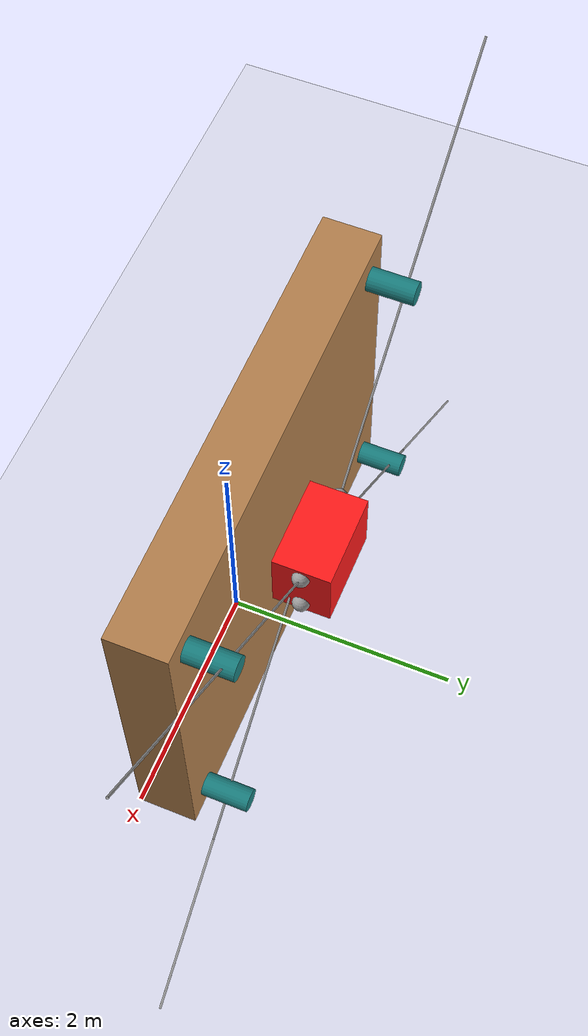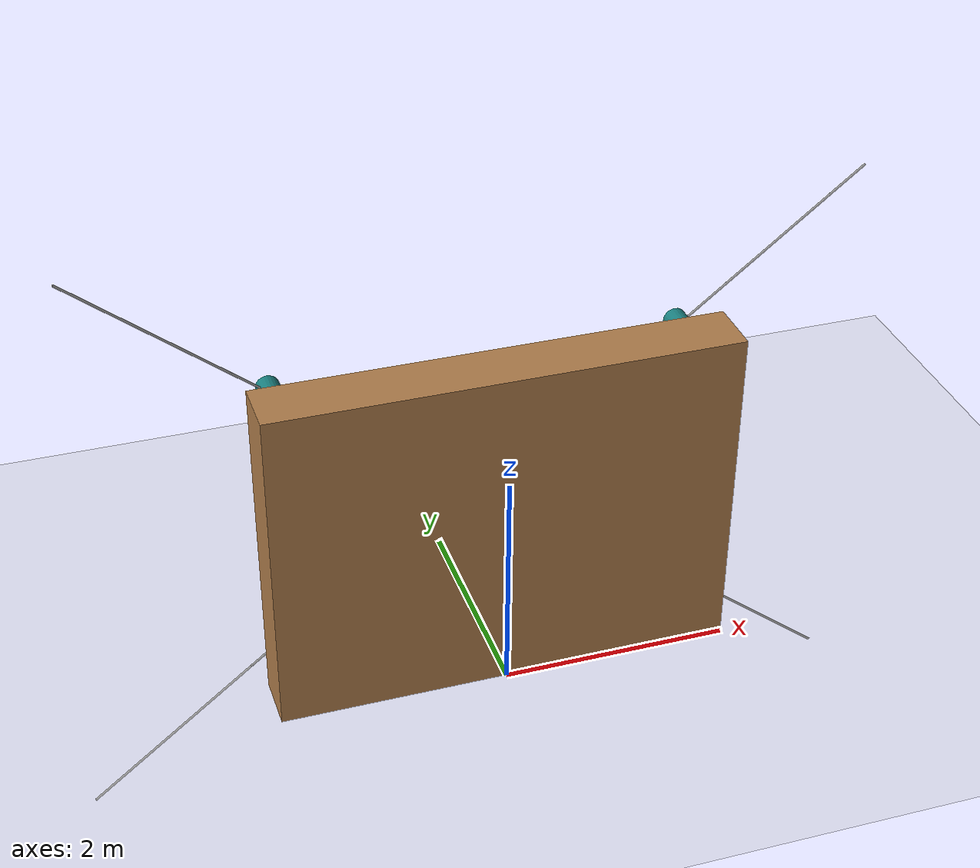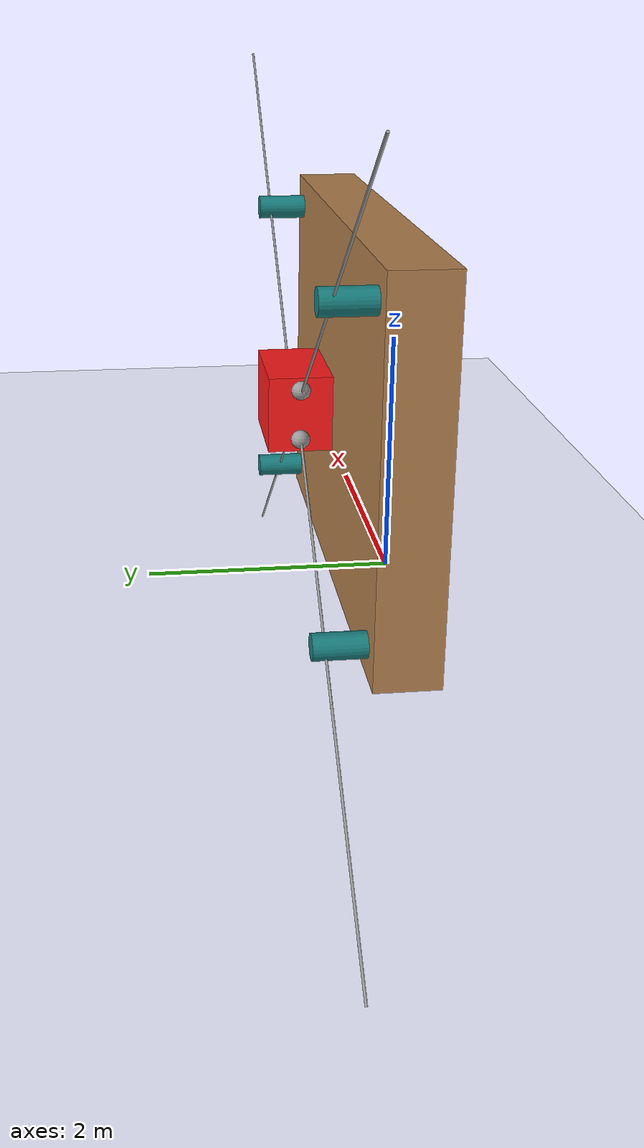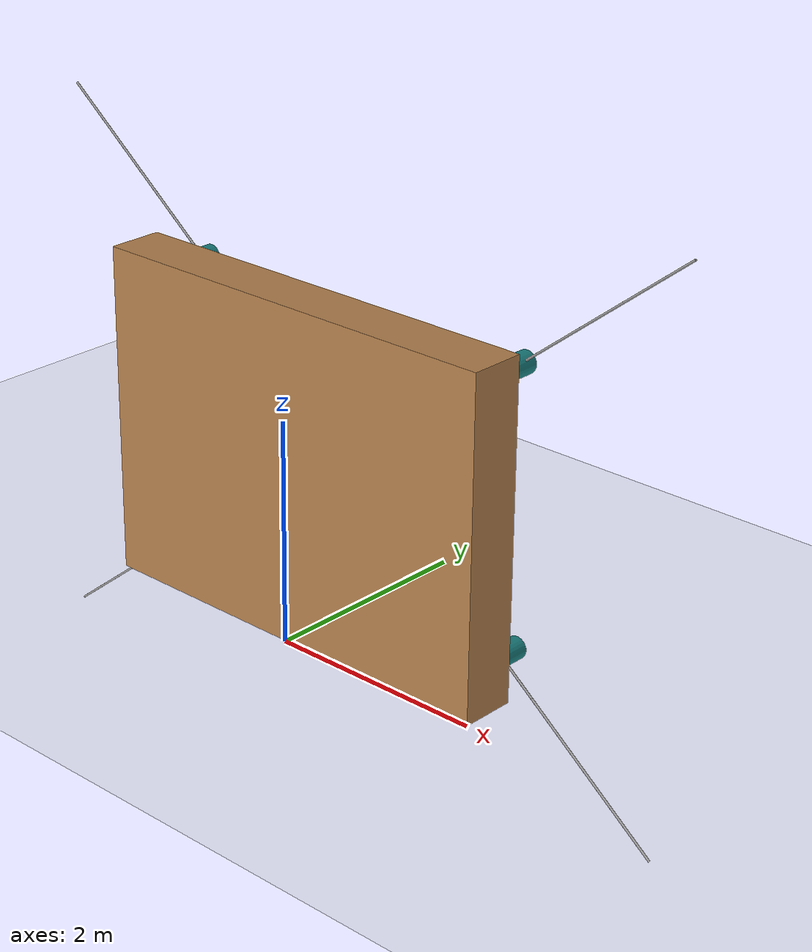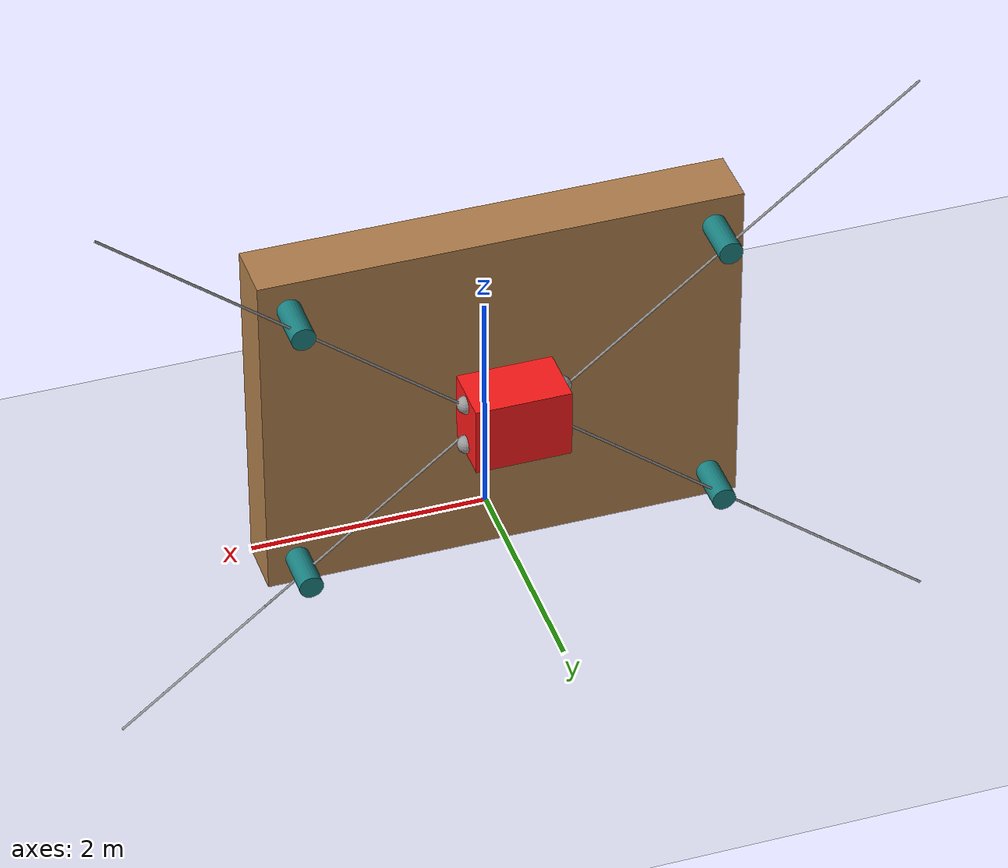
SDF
<sdf version="1.7">
 <world name="default">
  <light name="sun" type="directional">
   <pose>0 0 10 0 -0 0</pose>
   <diffuse>0.8 0.8 0.8 1</diffuse>
   <specular>0.2 0.2 0.2 1</specular>
   <attenuation>
    <range>1000</range>
    <constant>0.9</constant>
    <linear>0.01</linear>
    <quadratic>0.001</quadratic>
   </attenuation>
   <direction>-0.5 0.1 -0.9</direction>
   <spot><inner_angle>0</inner_angle><outer_angle>0</outer_angle><falloff>0</falloff></spot>
  </light>
  <model name="ground_plane">
   <static>1</static>
   <link name="link">
    <collision name="collision">
     <geometry><plane><normal>0 0 1</normal><size>100 100</size></plane></geometry>
     <surface>
      <contact><collide_bitmask>65535</collide_bitmask></contact>
      <friction><ode><mu>100</mu><mu2>50</mu2></ode></friction>
     </surface>
    </collision>
    <visual name="visual">
     <cast_shadows>0</cast_shadows>
     <geometry><plane><normal>0 0 1</normal><size>100 100</size></plane></geometry>
     <material>
      <script><uri>file://media/materials/scripts/gazebo.material</uri><name>Gazebo/Grey</name></script>
     </material>
    </visual>
   </link>
  </model>
  <gravity>0 0 -9.8</gravity>
  <magnetic_field>6e-06 2.3e-05 -4.2e-05</magnetic_field>
  <atmosphere type="adiabatic"/>
  <physics type="ode">
   <max_step_size>0.001</max_step_size>
   <real_time_factor>1</real_time_factor>
   <real_time_update_rate>1000</real_time_update_rate>
  </physics>
  <scene><ambient>0.4 0.4 0.4 1</ambient><background>0.7 0.7 0.7 1</background><shadows>1</shadows></scene>
  <audio><device>default</device></audio>
  <spherical_coordinates>
   <surface_model>EARTH_WGS84</surface_model>
   <latitude_deg>0</latitude_deg>
   <longitude_deg>0</longitude_deg>
   <elevation>0</elevation>
   <heading_deg>0</heading_deg>
  </spherical_coordinates>
  <model name="Wallbot_Basic">
   <link name="link_0">
    <inertial>
     <mass>1</mass>
     <inertia>
      <ixx>0.166667</ixx>
      <ixy>0</ixy>
      <ixz>0</ixz>
      <iyy>0.166667</iyy>
      <iyz>0</iyz>
      <izz>0.166667</izz>
     </inertia>
    </inertial>
    <pose>0.015 0 0.005 0 -0 0</pose>
    <visual name="visual">
     <geometry><box><size>0.8 0.5 0.6</size></box></geometry>
     <material>
      <lighting>1</lighting>
      <script><uri>file://media/materials/scripts/gazebo.material</uri><name>Gazebo/Grey</name></script>
      <shader type="pixel"><normal_map>__default__</normal_map></shader>
      <ambient>1 0.1 0.1 1</ambient>
      <diffuse>0.7 0.7 0.7 1</diffuse>
      <specular>0.01 0.01 0.01 1</specular>
      <emissive>0 0 0 1</emissive>
     </material>
    </visual>
    <collision name="collision">
     <geometry><box><size>0.8 0.5 0.6</size></box></geometry>
     <surface>
      <friction>
       <ode><mu>1</mu><mu2>1</mu2><fdir1>0 0 0</fdir1><slip1>0</slip1><slip2>0</slip2></ode>
       <torsional>
        <coefficient>1</coefficient>
        <patch_radius>0</patch_radius>
        <surface_radius>0</surface_radius>
        <use_patch_radius>1</use_patch_radius>
        <ode><slip>0</slip></ode>
       </torsional>
      </friction>
      <bounce><restitution_coefficient>0</restitution_coefficient><threshold>1e+06</threshold></bounce>
      <contact>
       <collide_without_contact>0</collide_without_contact>
       <collide_without_contact_bitmask>1</collide_without_contact_bitmask>
       <collide_bitmask>1</collide_bitmask>
       <ode>
        <soft_cfm>0</soft_cfm>
        <soft_erp>0.2</soft_erp>
        <kp>1e+13</kp>
        <kd>1</kd>
        <max_vel>0.01</max_vel>
        <min_depth>0</min_depth>
       </ode>
       <bullet>
        <split_impulse>1</split_impulse>
        <split_impulse_penetration_threshold>-0.01</split_impulse_penetration_threshold>
        <soft_cfm>0</soft_cfm>
        <soft_erp>0.2</soft_erp>
        <kp>1e+13</kp>
        <kd>1</kd>
       </bullet>
      </contact>
     </surface>
    </collision>
   </link>
   <link name="link_1">
    <inertial>
     <mass>1</mass>
     <inertia><ixx>0.1</ixx><ixy>0</ixy><ixz>0</ixz><iyy>0.1</iyy><iyz>0</iyz><izz>0.1</izz></inertia>
    </inertial>
    <pose>-0.385 0 0.205 0 -0 0</pose>
    <visual name="visual">
     <geometry><sphere><radius>0.075</radius></sphere></geometry>
     <material>
      <lighting>1</lighting>
      <script><uri>file://media/materials/scripts/gazebo.material</uri><name>Gazebo/Grey</name></script>
      <shader type="pixel"><normal_map>__default__</normal_map></shader>
      <ambient>0.3 0.3 0.3 1</ambient>
      <diffuse>0.7 0.7 0.7 1</diffuse>
      <specular>0.01 0.01 0.01 1</specular>
      <emissive>0 0 0 1</emissive>
     </material>
    </visual>
    <collision name="collision">
     <geometry><sphere><radius>0.075</radius></sphere></geometry>
     <surface>
      <friction>
       <ode><mu>1</mu><mu2>1</mu2><fdir1>0 0 0</fdir1><slip1>0</slip1><slip2>0</slip2></ode>
       <torsional>
        <coefficient>1</coefficient>
        <patch_radius>0</patch_radius>
        <surface_radius>0</surface_radius>
        <use_patch_radius>1</use_patch_radius>
        <ode><slip>0</slip></ode>
       </torsional>
      </friction>
      <bounce><restitution_coefficient>0</restitution_coefficient><threshold>1e+06</threshold></bounce>
      <contact>
       <collide_without_contact>0</collide_without_contact>
       <collide_without_contact_bitmask>1</collide_without_contact_bitmask>
       <collide_bitmask>1</collide_bitmask>
       <ode>
        <soft_cfm>0</soft_cfm>
        <soft_erp>0.2</soft_erp>
        <kp>1e+13</kp>
        <kd>1</kd>
        <max_vel>0.01</max_vel>
        <min_depth>0</min_depth>
       </ode>
       <bullet>
        <split_impulse>1</split_impulse>
        <split_impulse_penetration_threshold>-0.01</split_impulse_penetration_threshold>
        <soft_cfm>0</soft_cfm>
        <soft_erp>0.2</soft_erp>
        <kp>1e+13</kp>
        <kd>1</kd>
       </bullet>
      </contact>
     </surface>
    </collision>
   </link>
   <link name="link_1_clone">
    <inertial>
     <mass>1</mass>
     <inertia><ixx>0.1</ixx><ixy>0</ixy><ixz>0</ixz><iyy>0.1</iyy><iyz>0</iyz><izz>0.1</izz></inertia>
    </inertial>
    <pose>0.415 0 0.205 0 -0 0</pose>
    <visual name="visual">
     <geometry><sphere><radius>0.075</radius></sphere></geometry>
     <material>
      <lighting>1</lighting>
      <script><uri>file://media/materials/scripts/gazebo.material</uri><name>Gazebo/Grey</name></script>
      <shader type="pixel"><normal_map>__default__</normal_map></shader>
      <ambient>0.3 0.3 0.3 1</ambient>
      <diffuse>0.7 0.7 0.7 1</diffuse>
      <specular>0.01 0.01 0.01 1</specular>
      <emissive>0 0 0 1</emissive>
     </material>
    </visual>
    <collision name="collision">
     <geometry><sphere><radius>0.075</radius></sphere></geometry>
     <surface>
      <friction>
       <ode><mu>1</mu><mu2>1</mu2><fdir1>0 0 0</fdir1><slip1>0</slip1><slip2>0</slip2></ode>
       <torsional>
        <coefficient>1</coefficient>
        <patch_radius>0</patch_radius>
        <surface_radius>0</surface_radius>
        <use_patch_radius>1</use_patch_radius>
        <ode><slip>0</slip></ode>
       </torsional>
      </friction>
      <bounce><restitution_coefficient>0</restitution_coefficient><threshold>1e+06</threshold></bounce>
      <contact>
       <collide_without_contact>0</collide_without_contact>
       <collide_without_contact_bitmask>1</collide_without_contact_bitmask>
       <collide_bitmask>1</collide_bitmask>
       <ode>
        <soft_cfm>0</soft_cfm>
        <soft_erp>0.2</soft_erp>
        <kp>1e+13</kp>
        <kd>1</kd>
        <max_vel>0.01</max_vel>
        <min_depth>0</min_depth>
       </ode>
       <bullet>
        <split_impulse>1</split_impulse>
        <split_impulse_penetration_threshold>-0.01</split_impulse_penetration_threshold>
        <soft_cfm>0</soft_cfm>
        <soft_erp>0.2</soft_erp>
        <kp>1e+13</kp>
        <kd>1</kd>
       </bullet>
      </contact>
     </surface>
    </collision>
   </link>
   <link name="link_1_clone_0">
    <inertial>
     <mass>1</mass>
     <inertia><ixx>0.1</ixx><ixy>0</ixy><ixz>0</ixz><iyy>0.1</iyy><iyz>0</iyz><izz>0.1</izz></inertia>
    </inertial>
    <pose>0.415 0 -0.195 0 -0 0</pose>
    <visual name="visual">
     <geometry><sphere><radius>0.075</radius></sphere></geometry>
     <material>
      <lighting>1</lighting>
      <script><uri>file://media/materials/scripts/gazebo.material</uri><name>Gazebo/Grey</name></script>
      <shader type="pixel"><normal_map>__default__</normal_map></shader>
      <ambient>0.3 0.3 0.3 1</ambient>
      <diffuse>0.7 0.7 0.7 1</diffuse>
      <specular>0.01 0.01 0.01 1</specular>
      <emissive>0 0 0 1</emissive>
     </material>
    </visual>
    <collision name="collision">
     <geometry><sphere><radius>0.075</radius></sphere></geometry>
     <surface>
      <friction>
       <ode><mu>1</mu><mu2>1</mu2><fdir1>0 0 0</fdir1><slip1>0</slip1><slip2>0</slip2></ode>
       <torsional>
        <coefficient>1</coefficient>
        <patch_radius>0</patch_radius>
        <surface_radius>0</surface_radius>
        <use_patch_radius>1</use_patch_radius>
        <ode><slip>0</slip></ode>
       </torsional>
      </friction>
      <bounce><restitution_coefficient>0</restitution_coefficient><threshold>1e+06</threshold></bounce>
      <contact>
       <collide_without_contact>0</collide_without_contact>
       <collide_without_contact_bitmask>1</collide_without_contact_bitmask>
       <collide_bitmask>1</collide_bitmask>
       <ode>
        <soft_cfm>0</soft_cfm>
        <soft_erp>0.2</soft_erp>
        <kp>1e+13</kp>
        <kd>1</kd>
        <max_vel>0.01</max_vel>
        <min_depth>0</min_depth>
       </ode>
       <bullet>
        <split_impulse>1</split_impulse>
        <split_impulse_penetration_threshold>-0.01</split_impulse_penetration_threshold>
        <soft_cfm>0</soft_cfm>
        <soft_erp>0.2</soft_erp>
        <kp>1e+13</kp>
        <kd>1</kd>
       </bullet>
      </contact>
     </surface>
    </collision>
   </link>
   <link name="link_1_clone_1">
    <inertial>
     <mass>1</mass>
     <inertia><ixx>0.1</ixx><ixy>0</ixy><ixz>0</ixz><iyy>0.1</iyy><iyz>0</iyz><izz>0.1</izz></inertia>
    </inertial>
    <pose>-0.385 0 -0.195 0 -0 0</pose>
    <visual name="visual">
     <geometry><sphere><radius>0.075</radius></sphere></geometry>
     <material>
      <lighting>1</lighting>
      <script><uri>file://media/materials/scripts/gazebo.material</uri><name>Gazebo/Grey</name></script>
      <shader type="pixel"><normal_map>__default__</normal_map></shader>
      <ambient>0.3 0.3 0.3 1</ambient>
      <diffuse>0.7 0.7 0.7 1</diffuse>
      <specular>0.01 0.01 0.01 1</specular>
      <emissive>0 0 0 1</emissive>
     </material>
    </visual>
    <collision name="collision">
     <geometry><sphere><radius>0.075</radius></sphere></geometry>
     <surface>
      <friction>
       <ode><mu>1</mu><mu2>1</mu2><fdir1>0 0 0</fdir1><slip1>0</slip1><slip2>0</slip2></ode>
       <torsional>
        <coefficient>1</coefficient>
        <patch_radius>0</patch_radius>
        <surface_radius>0</surface_radius>
        <use_patch_radius>1</use_patch_radius>
        <ode><slip>0</slip></ode>
       </torsional>
      </friction>
      <bounce><restitution_coefficient>0</restitution_coefficient><threshold>1e+06</threshold></bounce>
      <contact>
       <collide_without_contact>0</collide_without_contact>
       <collide_without_contact_bitmask>1</collide_without_contact_bitmask>
       <collide_bitmask>1</collide_bitmask>
       <ode>
        <soft_cfm>0</soft_cfm>
        <soft_erp>0.2</soft_erp>
        <kp>1e+13</kp>
        <kd>1</kd>
        <max_vel>0.01</max_vel>
        <min_depth>0</min_depth>
       </ode>
       <bullet>
        <split_impulse>1</split_impulse>
        <split_impulse_penetration_threshold>-0.01</split_impulse_penetration_threshold>
        <soft_cfm>0</soft_cfm>
        <soft_erp>0.2</soft_erp>
        <kp>1e+13</kp>
        <kd>1</kd>
       </bullet>
      </contact>
     </surface>
    </collision>
   </link>
   <joint name="link_0_JOINT_0" type="fixed">
    <parent>link_0</parent>
    <child>link_1</child>
    <physics>
     <ode><limit><cfm>0</cfm><erp>0.2</erp></limit><suspension><cfm>0</cfm><erp>0.2</erp></suspension></ode>
    </physics>
   </joint>
   <joint name="link_0_JOINT_1" type="fixed">
    <parent>link_0</parent>
    <child>link_1_clone_1</child>
    <physics>
     <ode><limit><cfm>0</cfm><erp>0.2</erp></limit><suspension><cfm>0</cfm><erp>0.2</erp></suspension></ode>
    </physics>
   </joint>
   <joint name="link_0_JOINT_2" type="fixed">
    <parent>link_0</parent>
    <child>link_1_clone</child>
    <physics>
     <ode><limit><cfm>0</cfm><erp>0.2</erp></limit><suspension><cfm>0</cfm><erp>0.2</erp></suspension></ode>
    </physics>
   </joint>
   <joint name="link_0_JOINT_3" type="fixed">
    <parent>link_0</parent>
    <child>link_1_clone_0</child>
    <physics>
     <ode><limit><cfm>0</cfm><erp>0.2</erp></limit><suspension><cfm>0</cfm><erp>0.2</erp></suspension></ode>
    </physics>
   </joint>
   <static>0</static>
   <pose>0 0.8 1.5 8e-06 0 -8e-06</pose>
  </model>
  <model name="wallbot_wall">
   <link name="link">
    <inertial>
     <mass>1</mass>
     <inertia>
      <ixx>0.166667</ixx>
      <ixy>0</ixy>
      <ixz>0</ixz>
      <iyy>0.166667</iyy>
      <iyz>0</iyz>
      <izz>0.166667</izz>
     </inertia>
    </inertial>
    <visual name="visual">
     <geometry><box><size>4 0.5 3</size></box></geometry>
     <material>
      <script><name>Gazebo/Wood</name><uri>file://media/materials/scripts/gazebo.material</uri></script>
      <shader type="pixel"><normal_map>__default__</normal_map></shader>
      <ambient>0.7 0.7 0.3 1</ambient>
      <diffuse>0.7 0.7 0.7 1</diffuse>
      <specular>0.01 0.01 0.01 1</specular>
      <emissive>0 0 0 1</emissive>
     </material>
    </visual>
    <collision name="collision">
     <geometry><box><size>4 0.5 3</size></box></geometry>
     <surface>
      <friction>
       <ode><mu>1</mu><mu2>1</mu2><fdir1>0 0 0</fdir1><slip1>0</slip1><slip2>0</slip2></ode>
       <torsional>
        <coefficient>1</coefficient>
        <patch_radius>0</patch_radius>
        <surface_radius>0</surface_radius>
        <use_patch_radius>1</use_patch_radius>
        <ode><slip>0</slip></ode>
       </torsional>
      </friction>
      <bounce><restitution_coefficient>0</restitution_coefficient><threshold>1e+06</threshold></bounce>
      <contact>
       <collide_without_contact>0</collide_without_contact>
       <collide_without_contact_bitmask>1</collide_without_contact_bitmask>
       <collide_bitmask>1</collide_bitmask>
       <ode>
        <soft_cfm>0</soft_cfm>
        <soft_erp>0.2</soft_erp>
        <kp>1e+13</kp>
        <kd>1</kd>
        <max_vel>0.01</max_vel>
        <min_depth>0</min_depth>
       </ode>
       <bullet>
        <split_impulse>1</split_impulse>
        <split_impulse_penetration_threshold>-0.01</split_impulse_penetration_threshold>
        <soft_cfm>0</soft_cfm>
        <soft_erp>0.2</soft_erp>
        <kp>1e+13</kp>
        <kd>1</kd>
       </bullet>
      </contact>
     </surface>
    </collision>
   </link>
   <static>0</static>
   <pose>0.001722 0.249669 1.49995 -3.6e-05 2.9e-05 0.000172</pose>
  </model>
  <light name="user_directional_light_0" type="directional">
   <pose>3.8858 -4.10344 1 0 -0 0</pose>
   <diffuse>0.5 0.5 0.5 1</diffuse>
   <specular>0.1 0.1 0.1 1</specular>
   <direction>0.1 0.1 -0.9</direction>
   <attenuation>
    <range>20</range>
    <constant>0.5</constant>
    <linear>0.01</linear>
    <quadratic>0.001</quadratic>
   </attenuation>
  </light>
  <light name="user_point_light_0" type="point">
   <pose>1.35241 8.00975 1 0 -0 0</pose>
   <diffuse>0.5 0.5 0.5 1</diffuse>
   <specular>0.1 0.1 0.1 1</specular>
   <attenuation>
    <range>20</range>
    <constant>0.5</constant>
    <linear>0.01</linear>
    <quadratic>0.001</quadratic>
   </attenuation>
   <cast_shadows>0</cast_shadows>
   <direction>0 0 -1</direction>
  </light>
  <model name="Winch">
   <link name="link">
    <inertial>
     <mass>1</mass>
     <inertia><ixx>0.145833</ixx><ixy>0</ixy><ixz>0</ixz><iyy>0.145833</iyy><iyz>0</iyz><izz>0.125</izz></inertia>
    </inertial>
    <visual name="visual">
     <geometry><cylinder><radius>0.1</radius><length>0.4</length></cylinder></geometry>
     <material>
      <script><name>Gazebo/Grey</name><uri>file://media/materials/scripts/gazebo.material</uri></script>
      <shader type="pixel"><normal_map>__default__</normal_map></shader>
      <ambient>0.1 0.5 0.5 1</ambient>
      <diffuse>0.7 0.7 0.7 1</diffuse>
      <specular>0.01 0.01 0.01 1</specular>
      <emissive>0 0 0 1</emissive>
     </material>
    </visual>
    <collision name="collision">
     <geometry><cylinder><radius>0.1</radius><length>0.4</length></cylinder></geometry>
     <surface>
      <friction>
       <ode><mu>1</mu><mu2>1</mu2><fdir1>0 0 0</fdir1><slip1>0</slip1><slip2>0</slip2></ode>
       <torsional>
        <coefficient>1</coefficient>
        <patch_radius>0</patch_radius>
        <surface_radius>0</surface_radius>
        <use_patch_radius>1</use_patch_radius>
        <ode><slip>0</slip></ode>
       </torsional>
      </friction>
      <bounce><restitution_coefficient>0</restitution_coefficient><threshold>1e+06</threshold></bounce>
      <contact>
       <collide_without_contact>0</collide_without_contact>
       <collide_without_contact_bitmask>1</collide_without_contact_bitmask>
       <collide_bitmask>1</collide_bitmask>
       <ode>
        <soft_cfm>0</soft_cfm>
        <soft_erp>0.2</soft_erp>
        <kp>1e+13</kp>
        <kd>1</kd>
        <max_vel>0.01</max_vel>
        <min_depth>0</min_depth>
       </ode>
       <bullet>
        <split_impulse>1</split_impulse>
        <split_impulse_penetration_threshold>-0.01</split_impulse_penetration_threshold>
        <soft_cfm>0</soft_cfm>
        <soft_erp>0.2</soft_erp>
        <kp>1e+13</kp>
        <kd>1</kd>
       </bullet>
      </contact>
     </surface>
    </collision>
   </link>
   <static>0</static>
   <pose>1.75 0.7 2.75 1.57 -0 0</pose>
  </model>
  <model name="Winch_clone">
   <link name="link">
    <inertial>
     <mass>1</mass>
     <inertia><ixx>0.145833</ixx><ixy>0</ixy><ixz>0</ixz><iyy>0.145833</iyy><iyz>0</iyz><izz>0.125</izz></inertia>
    </inertial>
    <visual name="visual">
     <geometry><cylinder><radius>0.1</radius><length>0.4</length></cylinder></geometry>
     <material>
      <script><name>Gazebo/Grey</name><uri>file://media/materials/scripts/gazebo.material</uri></script>
      <shader type="pixel"><normal_map>__default__</normal_map></shader>
      <ambient>0.1 0.5 0.5 1</ambient>
      <diffuse>0.7 0.7 0.7 1</diffuse>
      <specular>0.01 0.01 0.01 1</specular>
      <emissive>0 0 0 1</emissive>
     </material>
    </visual>
    <collision name="collision">
     <geometry><cylinder><radius>0.1</radius><length>0.4</length></cylinder></geometry>
     <surface>
      <friction>
       <ode><mu>1</mu><mu2>1</mu2><fdir1>0 0 0</fdir1><slip1>0</slip1><slip2>0</slip2></ode>
       <torsional>
        <coefficient>1</coefficient>
        <patch_radius>0</patch_radius>
        <surface_radius>0</surface_radius>
        <use_patch_radius>1</use_patch_radius>
        <ode><slip>0</slip></ode>
       </torsional>
      </friction>
      <bounce><restitution_coefficient>0</restitution_coefficient><threshold>1e+06</threshold></bounce>
      <contact>
       <collide_without_contact>0</collide_without_contact>
       <collide_without_contact_bitmask>1</collide_without_contact_bitmask>
       <collide_bitmask>1</collide_bitmask>
       <ode>
        <soft_cfm>0</soft_cfm>
        <soft_erp>0.2</soft_erp>
        <kp>1e+13</kp>
        <kd>1</kd>
        <max_vel>0.01</max_vel>
        <min_depth>0</min_depth>
       </ode>
       <bullet>
        <split_impulse>1</split_impulse>
        <split_impulse_penetration_threshold>-0.01</split_impulse_penetration_threshold>
        <soft_cfm>0</soft_cfm>
        <soft_erp>0.2</soft_erp>
        <kp>1e+13</kp>
        <kd>1</kd>
       </bullet>
      </contact>
     </surface>
    </collision>
   </link>
   <static>0</static>
   <pose>1.75 0.7 0.25 1.57 -0 0</pose>
  </model>
  <model name="Winch_clone_0">
   <link name="link">
    <inertial>
     <mass>1</mass>
     <inertia><ixx>0.145833</ixx><ixy>0</ixy><ixz>0</ixz><iyy>0.145833</iyy><iyz>0</iyz><izz>0.125</izz></inertia>
    </inertial>
    <visual name="visual">
     <geometry><cylinder><radius>0.1</radius><length>0.4</length></cylinder></geometry>
     <material>
      <script><name>Gazebo/Grey</name><uri>file://media/materials/scripts/gazebo.material</uri></script>
      <shader type="pixel"><normal_map>__default__</normal_map></shader>
      <ambient>0.1 0.5 0.5 1</ambient>
      <diffuse>0.7 0.7 0.7 1</diffuse>
      <specular>0.01 0.01 0.01 1</specular>
      <emissive>0 0 0 1</emissive>
     </material>
    </visual>
    <collision name="collision">
     <geometry><cylinder><radius>0.1</radius><length>0.4</length></cylinder></geometry>
     <surface>
      <friction>
       <ode><mu>1</mu><mu2>1</mu2><fdir1>0 0 0</fdir1><slip1>0</slip1><slip2>0</slip2></ode>
       <torsional>
        <coefficient>1</coefficient>
        <patch_radius>0</patch_radius>
        <surface_radius>0</surface_radius>
        <use_patch_radius>1</use_patch_radius>
        <ode><slip>0</slip></ode>
       </torsional>
      </friction>
      <bounce><restitution_coefficient>0</restitution_coefficient><threshold>1e+06</threshold></bounce>
      <contact>
       <collide_without_contact>0</collide_without_contact>
       <collide_without_contact_bitmask>1</collide_without_contact_bitmask>
       <collide_bitmask>1</collide_bitmask>
       <ode>
        <soft_cfm>0</soft_cfm>
        <soft_erp>0.2</soft_erp>
        <kp>1e+13</kp>
        <kd>1</kd>
        <max_vel>0.01</max_vel>
        <min_depth>0</min_depth>
       </ode>
       <bullet>
        <split_impulse>1</split_impulse>
        <split_impulse_penetration_threshold>-0.01</split_impulse_penetration_threshold>
        <soft_cfm>0</soft_cfm>
        <soft_erp>0.2</soft_erp>
        <kp>1e+13</kp>
        <kd>1</kd>
       </bullet>
      </contact>
     </surface>
    </collision>
   </link>
   <static>0</static>
   <pose>-1.75 0.7 2.75 1.57 -0 0</pose>
  </model>
  <model name="Winch_clone_1">
   <link name="link">
    <inertial>
     <mass>1</mass>
     <inertia><ixx>0.145833</ixx><ixy>0</ixy><ixz>0</ixz><iyy>0.145833</iyy><iyz>0</iyz><izz>0.125</izz></inertia>
    </inertial>
    <visual name="visual">
     <geometry><cylinder><radius>0.1</radius><length>0.4</length></cylinder></geometry>
     <material>
      <script><name>Gazebo/Grey</name><uri>file://media/materials/scripts/gazebo.material</uri></script>
      <shader type="pixel"><normal_map>__default__</normal_map></shader>
      <ambient>0.1 0.5 0.5 1</ambient>
      <diffuse>0.7 0.7 0.7 1</diffuse>
      <specular>0.01 0.01 0.01 1</specular>
      <emissive>0 0 0 1</emissive>
     </material>
    </visual>
    <collision name="collision">
     <geometry><cylinder><radius>0.1</radius><length>0.4</length></cylinder></geometry>
     <surface>
      <friction>
       <ode><mu>1</mu><mu2>1</mu2><fdir1>0 0 0</fdir1><slip1>0</slip1><slip2>0</slip2></ode>
       <torsional>
        <coefficient>1</coefficient>
        <patch_radius>0</patch_radius>
        <surface_radius>0</surface_radius>
        <use_patch_radius>1</use_patch_radius>
        <ode><slip>0</slip></ode>
       </torsional>
      </friction>
      <bounce><restitution_coefficient>0</restitution_coefficient><threshold>1e+06</threshold></bounce>
      <contact>
       <collide_without_contact>0</collide_without_contact>
       <collide_without_contact_bitmask>1</collide_without_contact_bitmask>
       <collide_bitmask>1</collide_bitmask>
       <ode>
        <soft_cfm>0</soft_cfm>
        <soft_erp>0.2</soft_erp>
        <kp>1e+13</kp>
        <kd>1</kd>
        <max_vel>0.01</max_vel>
        <min_depth>0</min_depth>
       </ode>
       <bullet>
        <split_impulse>1</split_impulse>
        <split_impulse_penetration_threshold>-0.01</split_impulse_penetration_threshold>
        <soft_cfm>0</soft_cfm>
        <soft_erp>0.2</soft_erp>
        <kp>1e+13</kp>
        <kd>1</kd>
       </bullet>
      </contact>
     </surface>
    </collision>
   </link>
   <static>0</static>
   <pose>-1.75 0.7 0.25 1.57 -0 0</pose>
  </model>
  <model name="cable_demo">
   <link name="link">
    <inertial>
     <mass>1</mass>
     <inertia><ixx>0.145833</ixx><ixy>0</ixy><ixz>0</ixz><iyy>0.145833</iyy><iyz>0</iyz><izz>0.125</izz></inertia>
    </inertial>
    <visual name="visual">
     <geometry><cylinder><radius>0.01</radius><length>4</length></cylinder></geometry>
     <material>
      <script><name>Gazebo/Grey</name><uri>file://media/materials/scripts/gazebo.material</uri></script>
      <shader type="pixel"><normal_map>__default__</normal_map></shader>
      <ambient>0 0 0 1</ambient>
      <diffuse>0.7 0.7 0.7 1</diffuse>
      <specular>0.01 0.01 0.01 1</specular>
      <emissive>0 0 0 1</emissive>
     </material>
    </visual>
    <collision name="collision">
     <geometry><cylinder><radius>0.01</radius><length>4</length></cylinder></geometry>
     <surface>
      <friction>
       <ode><mu>1</mu><mu2>1</mu2><fdir1>0 0 0</fdir1><slip1>0</slip1><slip2>0</slip2></ode>
       <torsional>
        <coefficient>1</coefficient>
        <patch_radius>0</patch_radius>
        <surface_radius>0</surface_radius>
        <use_patch_radius>1</use_patch_radius>
        <ode><slip>0</slip></ode>
       </torsional>
      </friction>
      <bounce><restitution_coefficient>0</restitution_coefficient><threshold>1e+06</threshold></bounce>
      <contact>
       <collide_without_contact>0</collide_without_contact>
       <collide_without_contact_bitmask>1</collide_without_contact_bitmask>
       <collide_bitmask>1</collide_bitmask>
       <ode>
        <soft_cfm>0</soft_cfm>
        <soft_erp>0.2</soft_erp>
        <kp>1e+13</kp>
        <kd>1</kd>
        <max_vel>0.01</max_vel>
        <min_depth>0</min_depth>
       </ode>
       <bullet>
        <split_impulse>1</split_impulse>
        <split_impulse_penetration_threshold>-0.01</split_impulse_penetration_threshold>
        <soft_cfm>0</soft_cfm>
        <soft_erp>0.2</soft_erp>
        <kp>1e+13</kp>
        <kd>1</kd>
       </bullet>
      </contact>
     </surface>
    </collision>
   </link>
   <static>0</static>
   <pose>1.75 0.8 2.75 0 0.9 0</pose>
  </model>
  <model name="cable_demo_clone">
   <link name="link">
    <inertial>
     <mass>1</mass>
     <inertia><ixx>0.145833</ixx><ixy>0</ixy><ixz>0</ixz><iyy>0.145833</iyy><iyz>0</iyz><izz>0.125</izz></inertia>
    </inertial>
    <visual name="visual">
     <geometry><cylinder><radius>0.01</radius><length>4</length></cylinder></geometry>
     <material>
      <script><name>Gazebo/Grey</name><uri>file://media/materials/scripts/gazebo.material</uri></script>
      <shader type="pixel"><normal_map>__default__</normal_map></shader>
      <ambient>0 0 0 1</ambient>
      <diffuse>0.7 0.7 0.7 1</diffuse>
      <specular>0.01 0.01 0.01 1</specular>
      <emissive>0 0 0 1</emissive>
     </material>
    </visual>
    <collision name="collision">
     <geometry><cylinder><radius>0.01</radius><length>4</length></cylinder></geometry>
     <surface>
      <friction>
       <ode><mu>1</mu><mu2>1</mu2><fdir1>0 0 0</fdir1><slip1>0</slip1><slip2>0</slip2></ode>
       <torsional>
        <coefficient>1</coefficient>
        <patch_radius>0</patch_radius>
        <surface_radius>0</surface_radius>
        <use_patch_radius>1</use_patch_radius>
        <ode><slip>0</slip></ode>
       </torsional>
      </friction>
      <bounce><restitution_coefficient>0</restitution_coefficient><threshold>1e+06</threshold></bounce>
      <contact>
       <collide_without_contact>0</collide_without_contact>
       <collide_without_contact_bitmask>1</collide_without_contact_bitmask>
       <collide_bitmask>1</collide_bitmask>
       <ode>
        <soft_cfm>0</soft_cfm>
        <soft_erp>0.2</soft_erp>
        <kp>1e+13</kp>
        <kd>1</kd>
        <max_vel>0.01</max_vel>
        <min_depth>0</min_depth>
       </ode>
       <bullet>
        <split_impulse>1</split_impulse>
        <split_impulse_penetration_threshold>-0.01</split_impulse_penetration_threshold>
        <soft_cfm>0</soft_cfm>
        <soft_erp>0.2</soft_erp>
        <kp>1e+13</kp>
        <kd>1</kd>
       </bullet>
      </contact>
     </surface>
    </collision>
   </link>
   <static>0</static>
   <pose>-2 0.8 0.05 0 0.900001 0</pose>
  </model>
  <model name="cable_demo_clone_0">
   <link name="link">
    <inertial>
     <mass>1</mass>
     <inertia><ixx>0.145833</ixx><ixy>0</ixy><ixz>0</ixz><iyy>0.145833</iyy><iyz>0</iyz><izz>0.125</izz></inertia>
    </inertial>
    <visual name="visual">
     <geometry><cylinder><radius>0.01</radius><length>4</length></cylinder></geometry>
     <material>
      <script><name>Gazebo/Grey</name><uri>file://media/materials/scripts/gazebo.material</uri></script>
      <shader type="pixel"><normal_map>__default__</normal_map></shader>
      <ambient>0 0 0 1</ambient>
      <diffuse>0.7 0.7 0.7 1</diffuse>
      <specular>0.01 0.01 0.01 1</specular>
      <emissive>0 0 0 1</emissive>
     </material>
    </visual>
    <collision name="collision">
     <geometry><cylinder><radius>0.01</radius><length>4</length></cylinder></geometry>
     <surface>
      <friction>
       <ode><mu>1</mu><mu2>1</mu2><fdir1>0 0 0</fdir1><slip1>0</slip1><slip2>0</slip2></ode>
       <torsional>
        <coefficient>1</coefficient>
        <patch_radius>0</patch_radius>
        <surface_radius>0</surface_radius>
        <use_patch_radius>1</use_patch_radius>
        <ode><slip>0</slip></ode>
       </torsional>
      </friction>
      <bounce><restitution_coefficient>0</restitution_coefficient><threshold>1e+06</threshold></bounce>
      <contact>
       <collide_without_contact>0</collide_without_contact>
       <collide_without_contact_bitmask>1</collide_without_contact_bitmask>
       <collide_bitmask>1</collide_bitmask>
       <ode>
        <soft_cfm>0</soft_cfm>
        <soft_erp>0.2</soft_erp>
        <kp>1e+13</kp>
        <kd>1</kd>
        <max_vel>0.01</max_vel>
        <min_depth>0</min_depth>
       </ode>
       <bullet>
        <split_impulse>1</split_impulse>
        <split_impulse_penetration_threshold>-0.01</split_impulse_penetration_threshold>
        <soft_cfm>0</soft_cfm>
        <soft_erp>0.2</soft_erp>
        <kp>1e+13</kp>
        <kd>1</kd>
       </bullet>
      </contact>
     </surface>
    </collision>
   </link>
   <static>0</static>
   <pose>-1.75 0.8 2.75 0 -0.9 0</pose>
  </model>
  <model name="cable_demo_clone_1">
   <link name="link">
    <inertial>
     <mass>1</mass>
     <inertia><ixx>0.145833</ixx><ixy>0</ixy><ixz>0</ixz><iyy>0.145833</iyy><iyz>0</iyz><izz>0.125</izz></inertia>
    </inertial>
    <visual name="visual">
     <geometry><cylinder><radius>0.01</radius><length>4</length></cylinder></geometry>
     <material>
      <script><name>Gazebo/Grey</name><uri>file://media/materials/scripts/gazebo.material</uri></script>
      <shader type="pixel"><normal_map>__default__</normal_map></shader>
      <ambient>0 0 0 1</ambient>
      <diffuse>0.7 0.7 0.7 1</diffuse>
      <specular>0.01 0.01 0.01 1</specular>
      <emissive>0 0 0 1</emissive>
     </material>
    </visual>
    <collision name="collision">
     <geometry><cylinder><radius>0.01</radius><length>4</length></cylinder></geometry>
     <surface>
      <friction>
       <ode><mu>1</mu><mu2>1</mu2><fdir1>0 0 0</fdir1><slip1>0</slip1><slip2>0</slip2></ode>
       <torsional>
        <coefficient>1</coefficient>
        <patch_radius>0</patch_radius>
        <surface_radius>0</surface_radius>
        <use_patch_radius>1</use_patch_radius>
        <ode><slip>0</slip></ode>
       </torsional>
      </friction>
      <bounce><restitution_coefficient>0</restitution_coefficient><threshold>1e+06</threshold></bounce>
      <contact>
       <collide_without_contact>0</collide_without_contact>
       <collide_without_contact_bitmask>1</collide_without_contact_bitmask>
       <collide_bitmask>1</collide_bitmask>
       <ode>
        <soft_cfm>0</soft_cfm>
        <soft_erp>0.2</soft_erp>
        <kp>1e+13</kp>
        <kd>1</kd>
        <max_vel>0.01</max_vel>
        <min_depth>0</min_depth>
       </ode>
       <bullet>
        <split_impulse>1</split_impulse>
        <split_impulse_penetration_threshold>-0.01</split_impulse_penetration_threshold>
        <soft_cfm>0</soft_cfm>
        <soft_erp>0.2</soft_erp>
        <kp>1e+13</kp>
        <kd>1</kd>
       </bullet>
      </contact>
     </surface>
    </collision>
   </link>
   <static>0</static>
   <pose>1.75 0.7 0.25 0 -0.9 0</pose>
  </model>
 </world>
</sdf>
